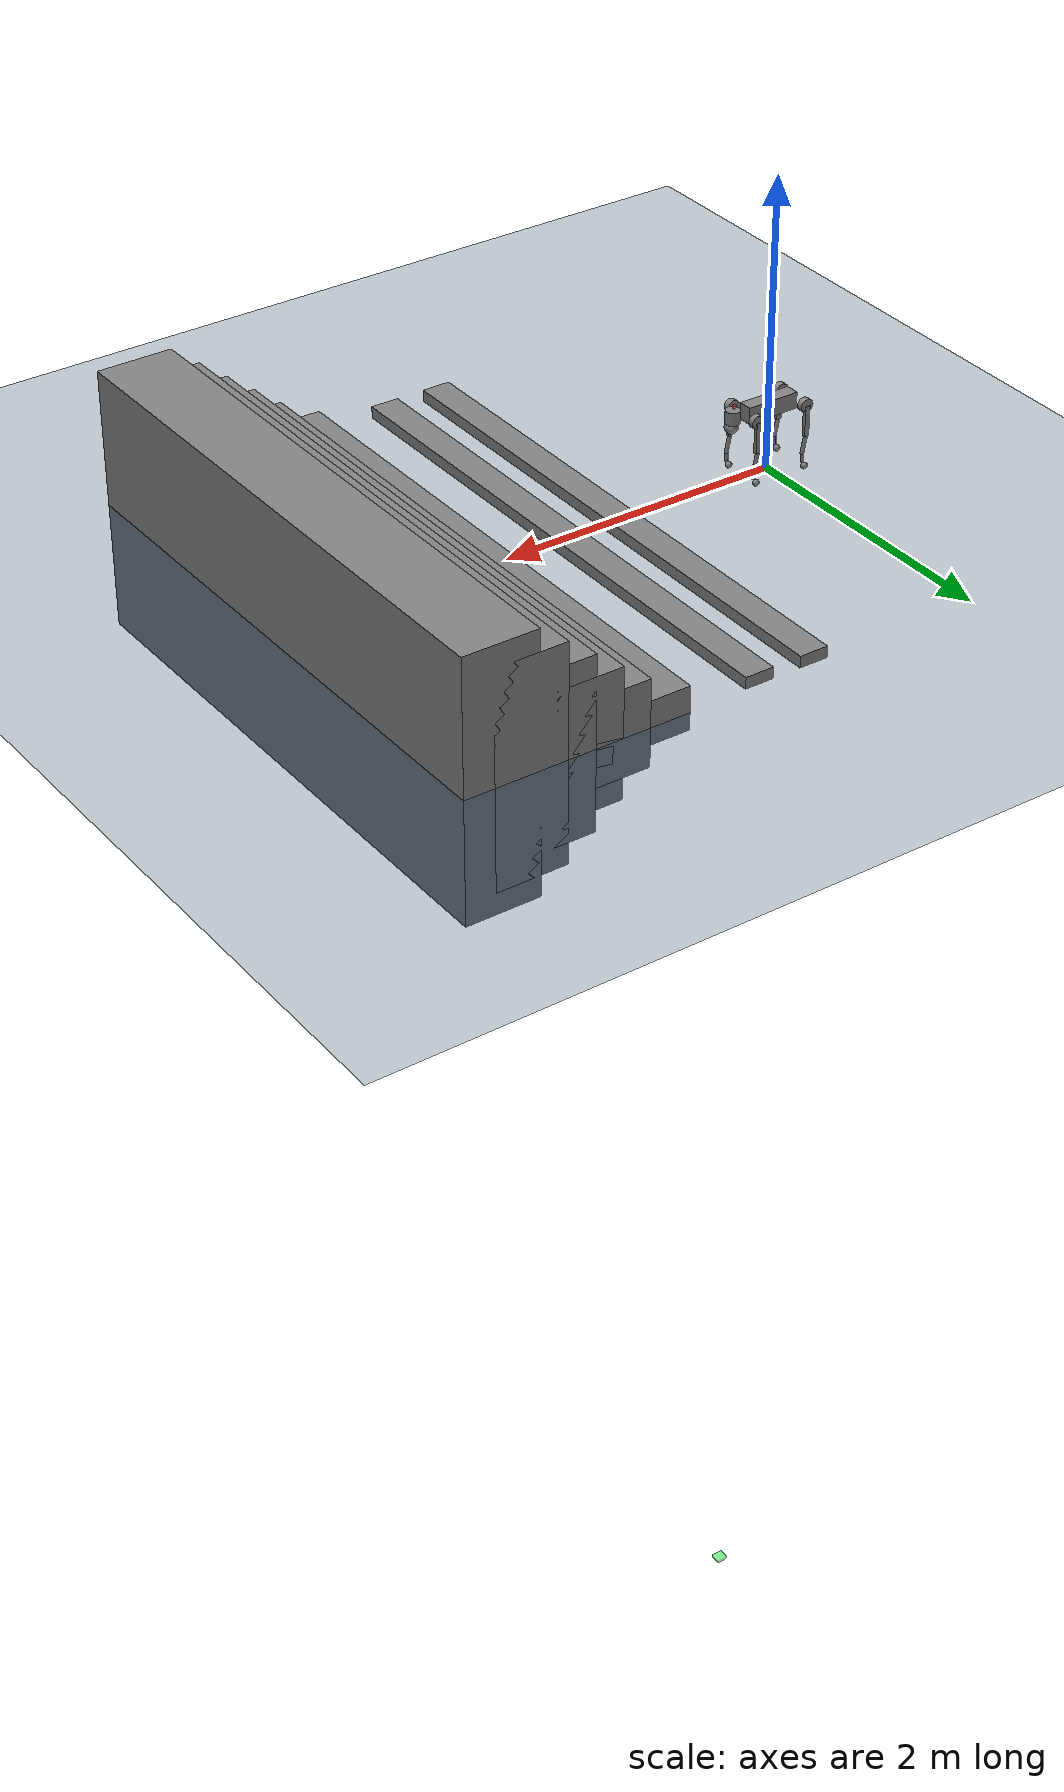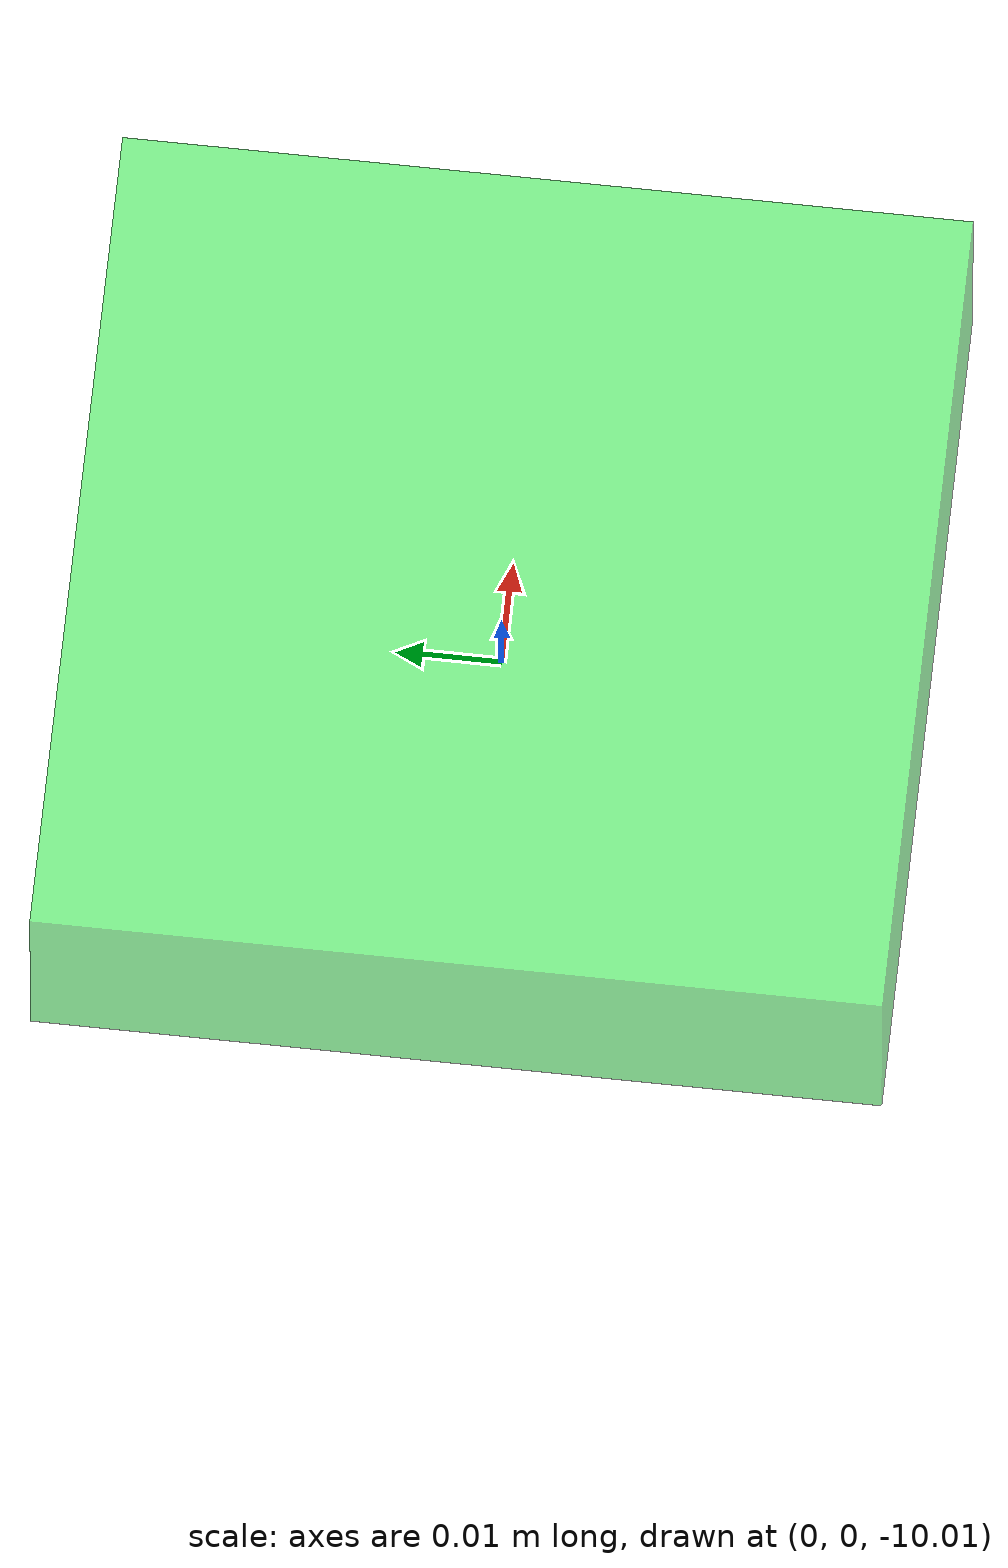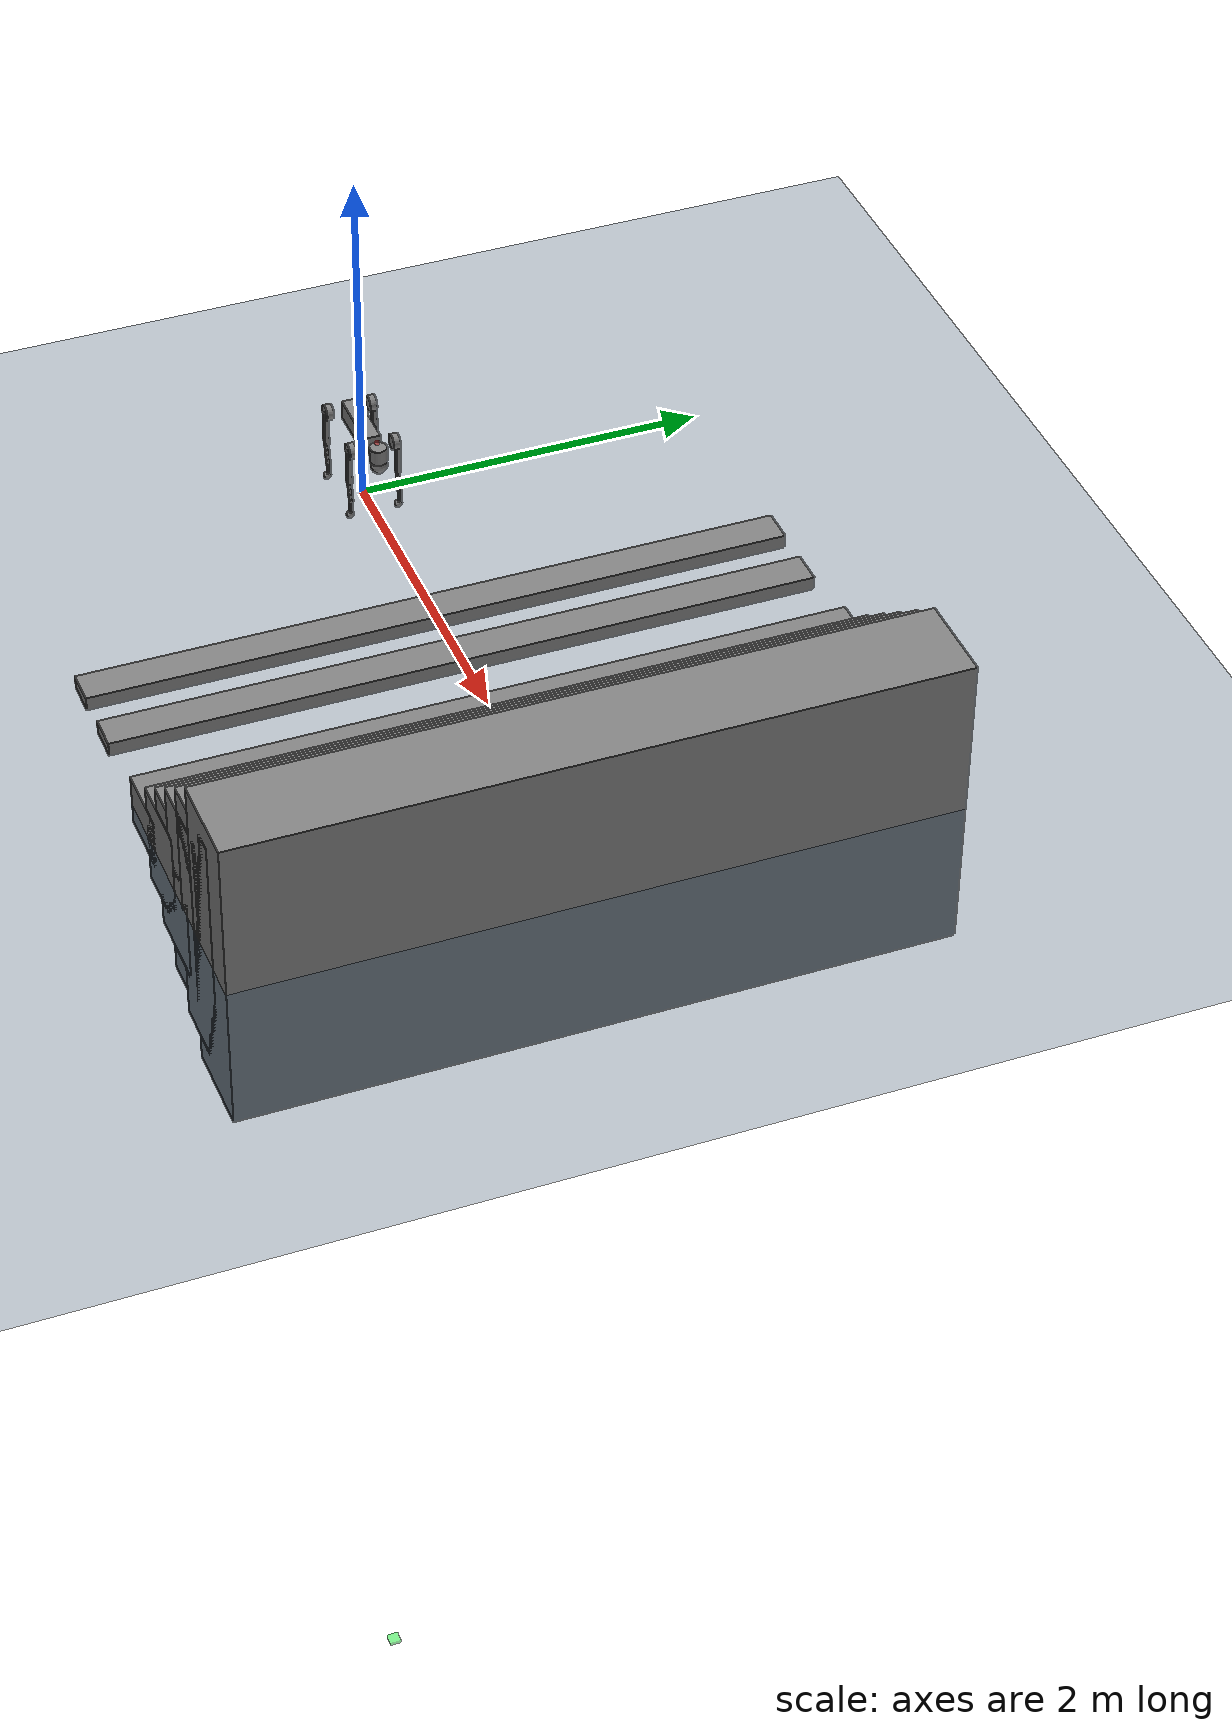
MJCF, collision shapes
<mujoco model="go2 scene">
  <include file="go2.xml"/>
  <include file="height_scan_mocap.xml"/>

  <statistic center="0 0 0.1" extent="0.8"/>

  <visual>
    <headlight diffuse="0.6 0.6 0.6" ambient="0.3 0.3 0.3" specular="0 0 0"/>
    <rgba haze="0.15 0.25 0.35 1"/>
    <global azimuth="-130" elevation="-20"/>
  </visual>

  <asset>
    <texture type="skybox" builtin="gradient" rgb1="0.3 0.5 0.7" rgb2="0 0 0" width="512" height="3072"/>
    <texture type="2d" name="groundplane" builtin="checker" mark="edge" rgb1="0.2 0.3 0.4" rgb2="0.1 0.2 0.3"
      markrgb="0.8 0.8 0.8" width="300" height="300"/>
    <material name="groundplane" texture="groundplane" texuniform="true" texrepeat="5 5" reflectance="0.2"/>
  </asset>

  <worldbody>
    <light pos="0 0 1.5" dir="0 0 -1" directional="true"/>
    <geom name="floor" size="0 0 0.05" type="plane" material="groundplane"/>

    <geom pos="1.2 0 0.04" type="box"  size="0.1 2 0.04" quat="1.0 0 0 0"/>
    <geom pos="1.6 0 0.04" type="box"  size="0.1 2 0.04" quat="1.0 0 0 0"/>

    <geom pos="2.3 0 0.02" type="box"  size="0.2 2 0.15" quat="1.0 0 0 0"/>
    <geom pos="2.6 0 0.02" type="box"  size="0.22 2 0.3" quat="1.0 0 0 0"/>
    <geom pos="2.8 0 0.02" type="box"  size="0.23 2 0.45" quat="1.0 0 0 0"/>
    <geom pos="3 0 0.02" type="box"  size="0.24 2 0.6" quat="1.0 0 0 0"/>
    <geom pos="3.2 0 0.02" type="box"  size="0.25 2 0.75" quat="1.0 0 0 0"/>
    <geom pos="3.4 0 0.02" type="box"  size="0.26 2 0.9" quat="1.0 0 0 0"/>
  </worldbody>
</mujoco>

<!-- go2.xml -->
<mujoco model="go2">
  <compiler angle="radian" meshdir="assets" autolimits="true" />

  <option cone="elliptic" impratio="100" />

  <default>
    <default class="go2">
      <geom friction="0.4" margin="0.001" condim="1"/>
      <joint axis="0 1 0" damping="0.1" armature="0.01" frictionloss="0.2"/>
      <motor ctrlrange="-23.7 23.7"/>
      <default class="abduction">
        <joint axis="1 0 0" range="-1.0472 1.0472"/>
      </default>
      <default class="hip">
        <default class="front_hip">
          <joint range="-1.5708 3.4907"/>
        </default>
        <default class="back_hip">
          <joint range="-0.5236 4.5379"/>
        </default>
      </default>
      <default class="knee">
        <joint range="-2.7227 -0.83776"/>
        <motor ctrlrange="-45.43 45.43"/>
      </default>
      <default class="visual">
        <geom type="mesh" contype="0" conaffinity="0" group="2"/>
      </default>
      <default class="collision">
        <geom group="3"/>
        <default class="foot">
          <geom size="0.022" pos="-0.002 0 -0.213" priority="1" condim="6"
            friction="0.4 0.02 0.01"/>
        </default>
      </default>
    </default>
  </default>

  <asset>
    <material name="metal" rgba=".9 .95 .95 1" />
    <material name="black" rgba="0 0 0 1" />
    <material name="white" rgba="1 1 1 1" />
    <material name="gray" rgba="0.671705 0.692426 0.774270 1" />

    <mesh file="base_0.obj" />
    <mesh file="base_1.obj" />
    <mesh file="base_2.obj" />
    <mesh file="base_3.obj" />
    <mesh file="base_4.obj" />
    <mesh file="hip_0.obj" />
    <mesh file="hip_1.obj" />
    <mesh file="thigh_0.obj" />
    <mesh file="thigh_1.obj" />
    <mesh file="thigh_mirror_0.obj" />
    <mesh file="thigh_mirror_1.obj" />
    <mesh file="calf_0.obj" />
    <mesh file="calf_1.obj" />
    <mesh file="calf_mirror_0.obj" />
    <mesh file="calf_mirror_1.obj" />
    <mesh file="foot.obj" />
  </asset>

  <worldbody>
    <body name="base_link" pos="0 0 0.445" childclass="go2">
      <inertial pos="0.021112 0 -0.005366" quat="-0.000543471 0.713435 -0.00173769 0.700719"
        mass="6.921"
        diaginertia="0.107027 0.0980771 0.0244531" />
      <freejoint />
      <geom mesh="base_0" material="black" class="visual" />
      <geom mesh="base_1" material="black" class="visual" />
      <geom mesh="base_2" material="black" class="visual" />
      <geom mesh="base_3" material="white" class="visual" />
      <geom mesh="base_4" material="gray" class="visual" />
      <geom size="0.1881 0.04675 0.057" type="box" class="collision" />
      <geom size="0.05 0.045" pos="0.285 0 0.01" type="cylinder" class="collision" />
      <geom size="0.047" pos="0.293 0 -0.06" class="collision" />
      <site name="imu" pos="-0.02557 0 0.04232" />
      <!-- Go2 head LiDAR (base_link frame). Mount RPY [roll, pitch, yaw] = [-2.9130, -0.1320, -1.0570] rad -->
      <site name="utlidar" pos="0.275 0 0.075" quat="0.065234 -0.859855 0.493362 -0.113964"
        size="0.015" rgba="1 0.2 0.2 0.6" />
      <body name="FL_hip" pos="0.1934 0.0465 0">
        <inertial pos="-0.0054 0.00194 -0.000105" quat="0.497014 0.499245 0.505462 0.498237"
          mass="0.678"
          diaginertia="0.00088403 0.000596003 0.000479967" />
        <joint name="FL_hip_joint" class="abduction" />
        <geom mesh="hip_0" material="metal" class="visual" />
        <geom mesh="hip_1" material="gray" class="visual" />
        <geom size="0.046 0.02" pos="0 0.08 0" quat="1 1 0 0" type="cylinder" class="collision" />
        <body name="FL_thigh" pos="0 0.0955 0">
          <inertial pos="-0.00374 -0.0223 -0.0327" quat="0.829533 0.0847635 -0.0200632 0.551623"
            mass="1.152"
            diaginertia="0.00594973 0.00584149 0.000878787" />
          <joint name="FL_thigh_joint" class="front_hip" />
          <geom mesh="thigh_0" material="metal" class="visual" />
          <geom mesh="thigh_1" material="gray" class="visual" />
          <geom size="0.1065 0.01225 0.017" pos="0 0 -0.1065" quat="0.707107 0 0.707107 0"
            type="box" class="collision" />
          <body name="FL_calf" pos="0 0 -0.213">
            <inertial pos="0.00629595 -0.000622121 -0.141417"
              quat="0.710672 0.00154099 -0.00450087 0.703508"
              mass="0.241352" diaginertia="0.0014901 0.00146356 5.31397e-05" />
            <joint name="FL_calf_joint" class="knee" />
            <geom mesh="calf_0" material="gray" class="visual" />
            <geom mesh="calf_1" material="black" class="visual" />
            <geom size="0.012 0.06" pos="0.008 0 -0.06" quat="0.994493 0 -0.104807 0"
              type="cylinder" class="collision" />
            <geom size="0.011 0.0325" pos="0.02 0 -0.148" quat="0.999688 0 0.0249974 0"
              type="cylinder" class="collision" />
            <geom pos="0 0 -0.213" mesh="foot" class="visual" material="black" />
            <geom name="FL" class="foot" />
            <body name="FL_foot" pos="0 0 -0.213" />
          </body>
        </body>
      </body>
      <body name="FR_hip" pos="0.1934 -0.0465 0">
        <inertial pos="-0.0054 -0.00194 -0.000105" quat="0.498237 0.505462 0.499245 0.497014"
          mass="0.678"
          diaginertia="0.00088403 0.000596003 0.000479967" />
        <joint name="FR_hip_joint" class="abduction" />
        <geom mesh="hip_0" material="metal" class="visual" quat="4.63268e-05 1 0 0" />
        <geom mesh="hip_1" material="gray" class="visual" quat="4.63268e-05 1 0 0" />
        <geom size="0.046 0.02" pos="0 -0.08 0" quat="0.707107 0.707107 0 0" type="cylinder"
          class="collision" />
        <body name="FR_thigh" pos="0 -0.0955 0">
          <inertial pos="-0.00374 0.0223 -0.0327" quat="0.551623 -0.0200632 0.0847635 0.829533"
            mass="1.152"
            diaginertia="0.00594973 0.00584149 0.000878787" />
          <joint name="FR_thigh_joint" class="front_hip" />
          <geom mesh="thigh_mirror_0" material="metal" class="visual" />
          <geom mesh="thigh_mirror_1" material="gray" class="visual" />
          <geom size="0.1065 0.01225 0.017" pos="0 0 -0.1065" quat="0.707107 0 0.707107 0"
            type="box" class="collision" />
          <body name="FR_calf" pos="0 0 -0.213">
            <inertial pos="0.00629595 0.000622121 -0.141417"
              quat="0.703508 -0.00450087 0.00154099 0.710672"
              mass="0.241352" diaginertia="0.0014901 0.00146356 5.31397e-05" />
            <joint name="FR_calf_joint" class="knee" />
            <geom mesh="calf_mirror_0" material="gray" class="visual" />
            <geom mesh="calf_mirror_1" material="black" class="visual" />
            <geom size="0.013 0.06" pos="0.01 0 -0.06" quat="0.995004 0 -0.0998334 0"
              type="cylinder" class="collision" />
            <geom size="0.011 0.0325" pos="0.02 0 -0.148" quat="0.999688 0 0.0249974 0"
              type="cylinder" class="collision" />
            <geom pos="0 0 -0.213" mesh="foot" class="visual" material="black" />
            <geom name="FR" class="foot" />
            <body name="FR_foot" pos="0 0 -0.213" />
          </body>
        </body>
      </body>
      <body name="RL_hip" pos="-0.1934 0.0465 0">
        <inertial pos="0.0054 0.00194 -0.000105" quat="0.505462 0.498237 0.497014 0.499245"
          mass="0.678"
          diaginertia="0.00088403 0.000596003 0.000479967" />
        <joint name="RL_hip_joint" class="abduction" />
        <geom mesh="hip_0" material="metal" class="visual" quat="4.63268e-05 0 1 0" />
        <geom mesh="hip_1" material="gray" class="visual" quat="4.63268e-05 0 1 0" />
        <geom size="0.046 0.02" pos="0 0.08 0" quat="0.707107 0.707107 0 0" type="cylinder"
          class="collision" />
        <body name="RL_thigh" pos="0 0.0955 0">
          <inertial pos="-0.00374 -0.0223 -0.0327" quat="0.829533 0.0847635 -0.0200632 0.551623"
            mass="1.152"
            diaginertia="0.00594973 0.00584149 0.000878787" />
          <joint name="RL_thigh_joint" class="back_hip" />
          <geom mesh="thigh_0" material="metal" class="visual" />
          <geom mesh="thigh_1" material="gray" class="visual" />
          <geom size="0.1065 0.01225 0.017" pos="0 0 -0.1065" quat="0.707107 0 0.707107 0"
            type="box" class="collision" />
          <body name="RL_calf" pos="0 0 -0.213">
            <inertial pos="0.00629595 -0.000622121 -0.141417"
              quat="0.710672 0.00154099 -0.00450087 0.703508"
              mass="0.241352" diaginertia="0.0014901 0.00146356 5.31397e-05" />
            <joint name="RL_calf_joint" class="knee" />
            <geom mesh="calf_0" material="gray" class="visual" />
            <geom mesh="calf_1" material="black" class="visual" />
            <geom size="0.013 0.06" pos="0.01 0 -0.06" quat="0.995004 0 -0.0998334 0"
              type="cylinder" class="collision" />
            <geom size="0.011 0.0325" pos="0.02 0 -0.148" quat="0.999688 0 0.0249974 0"
              type="cylinder" class="collision" />
            <geom pos="0 0 -0.213" mesh="foot" class="visual" material="black" />
            <geom name="RL" class="foot" />
            <body name="RL_foot" pos="0 0 -0.213" />
          </body>
        </body>
      </body>
      <body name="RR_hip" pos="-0.1934 -0.0465 0">
        <inertial pos="0.0054 -0.00194 -0.000105" quat="0.499245 0.497014 0.498237 0.505462"
          mass="0.678"
          diaginertia="0.00088403 0.000596003 0.000479967" />
        <joint name="RR_hip_joint" class="abduction" />
        <geom mesh="hip_0" material="metal" class="visual"
          quat="2.14617e-09 4.63268e-05 4.63268e-05 -1" />
        <geom mesh="hip_1" material="gray" class="visual"
          quat="2.14617e-09 4.63268e-05 4.63268e-05 -1" />
        <geom size="0.046 0.02" pos="0 -0.08 0" quat="0.707107 0.707107 0 0" type="cylinder"
          class="collision" />
        <body name="RR_thigh" pos="0 -0.0955 0">
          <inertial pos="-0.00374 0.0223 -0.0327" quat="0.551623 -0.0200632 0.0847635 0.829533"
            mass="1.152"
            diaginertia="0.00594973 0.00584149 0.000878787" />
          <joint name="RR_thigh_joint" class="back_hip" />
          <geom mesh="thigh_mirror_0" material="metal" class="visual" />
          <geom mesh="thigh_mirror_1" material="gray" class="visual" />
          <geom size="0.1065 0.01225 0.017" pos="0 0 -0.1065" quat="0.707107 0 0.707107 0"
            type="box" class="collision" />
          <body name="RR_calf" pos="0 0 -0.213">
            <inertial pos="0.00629595 0.000622121 -0.141417"
              quat="0.703508 -0.00450087 0.00154099 0.710672"
              mass="0.241352" diaginertia="0.0014901 0.00146356 5.31397e-05" />
            <joint name="RR_calf_joint" class="knee" />
            <geom mesh="calf_mirror_0" material="gray" class="visual" />
            <geom mesh="calf_mirror_1" material="black" class="visual" />
            <geom size="0.013 0.06" pos="0.01 0 -0.06" quat="0.995004 0 -0.0998334 0"
              type="cylinder" class="collision" />
            <geom size="0.011 0.0325" pos="0.02 0 -0.148" quat="0.999688 0 0.0249974 0"
              type="cylinder" class="collision" />
            <geom pos="0 0 -0.213" mesh="foot" class="visual" material="black" />
            <geom name="RR" class="foot" />
            <body name="RR_foot" pos="0 0 -0.213" />
          </body>
        </body>
      </body>
    </body>
  </worldbody>

  <actuator>
    <motor class="abduction" name="FR_hip" joint="FR_hip_joint" />
    <motor class="hip" name="FR_thigh" joint="FR_thigh_joint" />
    <motor class="knee" name="FR_calf" joint="FR_calf_joint" />
    <motor class="abduction" name="FL_hip" joint="FL_hip_joint" />
    <motor class="hip" name="FL_thigh" joint="FL_thigh_joint" />
    <motor class="knee" name="FL_calf" joint="FL_calf_joint" />
    <motor class="abduction" name="RR_hip" joint="RR_hip_joint" />
    <motor class="hip" name="RR_thigh" joint="RR_thigh_joint" />
    <motor class="knee" name="RR_calf" joint="RR_calf_joint" />
    <motor class="abduction" name="RL_hip" joint="RL_hip_joint" />
    <motor class="hip" name="RL_thigh" joint="RL_thigh_joint" />
    <motor class="knee" name="RL_calf" joint="RL_calf_joint" />
  </actuator>

  <sensor>
    <jointpos name="FR_hip_pos" joint="FR_hip_joint" />
    <jointpos name="FR_thigh_pos" joint="FR_thigh_joint" />
    <jointpos name="FR_calf_pos" joint="FR_calf_joint" />
    <jointpos name="FL_hip_pos" joint="FL_hip_joint" />
    <jointpos name="FL_thigh_pos" joint="FL_thigh_joint" />
    <jointpos name="FL_calf_pos" joint="FL_calf_joint" />
    <jointpos name="RR_hip_pos" joint="RR_hip_joint" />
    <jointpos name="RR_thigh_pos" joint="RR_thigh_joint" />
    <jointpos name="RR_calf_pos" joint="RR_calf_joint" />
    <jointpos name="RL_hip_pos" joint="RL_hip_joint" />
    <jointpos name="RL_thigh_pos" joint="RL_thigh_joint" />
    <jointpos name="RL_calf_pos" joint="RL_calf_joint" />

    <jointvel name="FR_hip_vel" joint="FR_hip_joint" />
    <jointvel name="FR_thigh_vel" joint="FR_thigh_joint" />
    <jointvel name="FR_calf_vel" joint="FR_calf_joint" />
    <jointvel name="FL_hip_vel" joint="FL_hip_joint" />
    <jointvel name="FL_thigh_vel" joint="FL_thigh_joint" />
    <jointvel name="FL_calf_vel" joint="FL_calf_joint" />
    <jointvel name="RR_hip_vel" joint="RR_hip_joint" />
    <jointvel name="RR_thigh_vel" joint="RR_thigh_joint" />
    <jointvel name="RR_calf_vel" joint="RR_calf_joint" />
    <jointvel name="RL_hip_vel" joint="RL_hip_joint" />
    <jointvel name="RL_thigh_vel" joint="RL_thigh_joint" />
    <jointvel name="RL_calf_vel" joint="RL_calf_joint" />

    <jointactuatorfrc name="FR_hip_torque" joint="FR_hip_joint" noise="0.01" />
    <jointactuatorfrc name="FR_thigh_torque" joint="FR_thigh_joint" noise="0.01" />
    <jointactuatorfrc name="FR_calf_torque" joint="FR_calf_joint" noise="0.01" />
    <jointactuatorfrc name="FL_hip_torque" joint="FL_hip_joint" noise="0.01" />
    <jointactuatorfrc name="FL_thigh_torque" joint="FL_thigh_joint" noise="0.01" />
    <jointactuatorfrc name="FL_calf_torque" joint="FL_calf_joint" noise="0.01" />
    <jointactuatorfrc name="RR_hip_torque" joint="RR_hip_joint" noise="0.01" />
    <jointactuatorfrc name="RR_thigh_torque" joint="RR_thigh_joint" noise="0.01" />
    <jointactuatorfrc name="RR_calf_torque" joint="RR_calf_joint" noise="0.01" />
    <jointactuatorfrc name="RL_hip_torque" joint="RL_hip_joint" noise="0.01" />
    <jointactuatorfrc name="RL_thigh_torque" joint="RL_thigh_joint" noise="0.01" />
    <jointactuatorfrc name="RL_calf_torque" joint="RL_calf_joint" noise="0.01" />

    <framequat name="imu_quat" objtype="site" objname="imu" />
    <gyro name="imu_gyro" site="imu" />
    <accelerometer name="imu_acc" site="imu" />

    <framepos name="frame_pos" objtype="site" objname="imu" />
    <framelinvel name="frame_vel" objtype="site" objname="imu" />
  </sensor>

  <keyframe>
    <key name="home" qpos="0 0 0.27 1 0 0 0 0 0.9 -1.8 0 0.9 -1.8 0 0.9 -1.8 0 0.9 -1.8"
      ctrl="0 0.9 -1.8 0 0.9 -1.8 0 0.9 -1.8 0 0.9 -1.8" />
  </keyframe>
</mujoco>

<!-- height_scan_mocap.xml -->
<mujoco model="height_scan_mocap">
  <worldbody>
    <body mocap="true" name="hs_000" pos="0 0 -10"><geom type="box" size="0.04 0.04 0.012" rgba="0.1 0.9 0.2 0.55" contype="0" conaffinity="0" group="2"/></body>
    <body mocap="true" name="hs_001" pos="0 0 -10"><geom type="box" size="0.04 0.04 0.012" rgba="0.1 0.9 0.2 0.55" contype="0" conaffinity="0" group="2"/></body>
    <body mocap="true" name="hs_002" pos="0 0 -10"><geom type="box" size="0.04 0.04 0.012" rgba="0.1 0.9 0.2 0.55" contype="0" conaffinity="0" group="2"/></body>
    <body mocap="true" name="hs_003" pos="0 0 -10"><geom type="box" size="0.04 0.04 0.012" rgba="0.1 0.9 0.2 0.55" contype="0" conaffinity="0" group="2"/></body>
    <body mocap="true" name="hs_004" pos="0 0 -10"><geom type="box" size="0.04 0.04 0.012" rgba="0.1 0.9 0.2 0.55" contype="0" conaffinity="0" group="2"/></body>
    <body mocap="true" name="hs_005" pos="0 0 -10"><geom type="box" size="0.04 0.04 0.012" rgba="0.1 0.9 0.2 0.55" contype="0" conaffinity="0" group="2"/></body>
    <body mocap="true" name="hs_006" pos="0 0 -10"><geom type="box" size="0.04 0.04 0.012" rgba="0.1 0.9 0.2 0.55" contype="0" conaffinity="0" group="2"/></body>
    <body mocap="true" name="hs_007" pos="0 0 -10"><geom type="box" size="0.04 0.04 0.012" rgba="0.1 0.9 0.2 0.55" contype="0" conaffinity="0" group="2"/></body>
    <body mocap="true" name="hs_008" pos="0 0 -10"><geom type="box" size="0.04 0.04 0.012" rgba="0.1 0.9 0.2 0.55" contype="0" conaffinity="0" group="2"/></body>
    <body mocap="true" name="hs_009" pos="0 0 -10"><geom type="box" size="0.04 0.04 0.012" rgba="0.1 0.9 0.2 0.55" contype="0" conaffinity="0" group="2"/></body>
    <body mocap="true" name="hs_010" pos="0 0 -10"><geom type="box" size="0.04 0.04 0.012" rgba="0.1 0.9 0.2 0.55" contype="0" conaffinity="0" group="2"/></body>
    <body mocap="true" name="hs_011" pos="0 0 -10"><geom type="box" size="0.04 0.04 0.012" rgba="0.1 0.9 0.2 0.55" contype="0" conaffinity="0" group="2"/></body>
    <body mocap="true" name="hs_012" pos="0 0 -10"><geom type="box" size="0.04 0.04 0.012" rgba="0.1 0.9 0.2 0.55" contype="0" conaffinity="0" group="2"/></body>
    <body mocap="true" name="hs_013" pos="0 0 -10"><geom type="box" size="0.04 0.04 0.012" rgba="0.1 0.9 0.2 0.55" contype="0" conaffinity="0" group="2"/></body>
    <body mocap="true" name="hs_014" pos="0 0 -10"><geom type="box" size="0.04 0.04 0.012" rgba="0.1 0.9 0.2 0.55" contype="0" conaffinity="0" group="2"/></body>
    <body mocap="true" name="hs_015" pos="0 0 -10"><geom type="box" size="0.04 0.04 0.012" rgba="0.1 0.9 0.2 0.55" contype="0" conaffinity="0" group="2"/></body>
    <body mocap="true" name="hs_016" pos="0 0 -10"><geom type="box" size="0.04 0.04 0.012" rgba="0.1 0.9 0.2 0.55" contype="0" conaffinity="0" group="2"/></body>
    <body mocap="true" name="hs_017" pos="0 0 -10"><geom type="box" size="0.04 0.04 0.012" rgba="0.1 0.9 0.2 0.55" contype="0" conaffinity="0" group="2"/></body>
    <body mocap="true" name="hs_018" pos="0 0 -10"><geom type="box" size="0.04 0.04 0.012" rgba="0.1 0.9 0.2 0.55" contype="0" conaffinity="0" group="2"/></body>
    <body mocap="true" name="hs_019" pos="0 0 -10"><geom type="box" size="0.04 0.04 0.012" rgba="0.1 0.9 0.2 0.55" contype="0" conaffinity="0" group="2"/></body>
    <body mocap="true" name="hs_020" pos="0 0 -10"><geom type="box" size="0.04 0.04 0.012" rgba="0.1 0.9 0.2 0.55" contype="0" conaffinity="0" group="2"/></body>
    <body mocap="true" name="hs_021" pos="0 0 -10"><geom type="box" size="0.04 0.04 0.012" rgba="0.1 0.9 0.2 0.55" contype="0" conaffinity="0" group="2"/></body>
    <body mocap="true" name="hs_022" pos="0 0 -10"><geom type="box" size="0.04 0.04 0.012" rgba="0.1 0.9 0.2 0.55" contype="0" conaffinity="0" group="2"/></body>
    <body mocap="true" name="hs_023" pos="0 0 -10"><geom type="box" size="0.04 0.04 0.012" rgba="0.1 0.9 0.2 0.55" contype="0" conaffinity="0" group="2"/></body>
    <body mocap="true" name="hs_024" pos="0 0 -10"><geom type="box" size="0.04 0.04 0.012" rgba="0.1 0.9 0.2 0.55" contype="0" conaffinity="0" group="2"/></body>
    <body mocap="true" name="hs_025" pos="0 0 -10"><geom type="box" size="0.04 0.04 0.012" rgba="0.1 0.9 0.2 0.55" contype="0" conaffinity="0" group="2"/></body>
    <body mocap="true" name="hs_026" pos="0 0 -10"><geom type="box" size="0.04 0.04 0.012" rgba="0.1 0.9 0.2 0.55" contype="0" conaffinity="0" group="2"/></body>
    <body mocap="true" name="hs_027" pos="0 0 -10"><geom type="box" size="0.04 0.04 0.012" rgba="0.1 0.9 0.2 0.55" contype="0" conaffinity="0" group="2"/></body>
    <body mocap="true" name="hs_028" pos="0 0 -10"><geom type="box" size="0.04 0.04 0.012" rgba="0.1 0.9 0.2 0.55" contype="0" conaffinity="0" group="2"/></body>
    <body mocap="true" name="hs_029" pos="0 0 -10"><geom type="box" size="0.04 0.04 0.012" rgba="0.1 0.9 0.2 0.55" contype="0" conaffinity="0" group="2"/></body>
    <body mocap="true" name="hs_030" pos="0 0 -10"><geom type="box" size="0.04 0.04 0.012" rgba="0.1 0.9 0.2 0.55" contype="0" conaffinity="0" group="2"/></body>
    <body mocap="true" name="hs_031" pos="0 0 -10"><geom type="box" size="0.04 0.04 0.012" rgba="0.1 0.9 0.2 0.55" contype="0" conaffinity="0" group="2"/></body>
    <body mocap="true" name="hs_032" pos="0 0 -10"><geom type="box" size="0.04 0.04 0.012" rgba="0.1 0.9 0.2 0.55" contype="0" conaffinity="0" group="2"/></body>
    <body mocap="true" name="hs_033" pos="0 0 -10"><geom type="box" size="0.04 0.04 0.012" rgba="0.1 0.9 0.2 0.55" contype="0" conaffinity="0" group="2"/></body>
    <body mocap="true" name="hs_034" pos="0 0 -10"><geom type="box" size="0.04 0.04 0.012" rgba="0.1 0.9 0.2 0.55" contype="0" conaffinity="0" group="2"/></body>
    <body mocap="true" name="hs_035" pos="0 0 -10"><geom type="box" size="0.04 0.04 0.012" rgba="0.1 0.9 0.2 0.55" contype="0" conaffinity="0" group="2"/></body>
    <body mocap="true" name="hs_036" pos="0 0 -10"><geom type="box" size="0.04 0.04 0.012" rgba="0.1 0.9 0.2 0.55" contype="0" conaffinity="0" group="2"/></body>
    <body mocap="true" name="hs_037" pos="0 0 -10"><geom type="box" size="0.04 0.04 0.012" rgba="0.1 0.9 0.2 0.55" contype="0" conaffinity="0" group="2"/></body>
    <body mocap="true" name="hs_038" pos="0 0 -10"><geom type="box" size="0.04 0.04 0.012" rgba="0.1 0.9 0.2 0.55" contype="0" conaffinity="0" group="2"/></body>
    <body mocap="true" name="hs_039" pos="0 0 -10"><geom type="box" size="0.04 0.04 0.012" rgba="0.1 0.9 0.2 0.55" contype="0" conaffinity="0" group="2"/></body>
    <body mocap="true" name="hs_040" pos="0 0 -10"><geom type="box" size="0.04 0.04 0.012" rgba="0.1 0.9 0.2 0.55" contype="0" conaffinity="0" group="2"/></body>
    <body mocap="true" name="hs_041" pos="0 0 -10"><geom type="box" size="0.04 0.04 0.012" rgba="0.1 0.9 0.2 0.55" contype="0" conaffinity="0" group="2"/></body>
    <body mocap="true" name="hs_042" pos="0 0 -10"><geom type="box" size="0.04 0.04 0.012" rgba="0.1 0.9 0.2 0.55" contype="0" conaffinity="0" group="2"/></body>
    <body mocap="true" name="hs_043" pos="0 0 -10"><geom type="box" size="0.04 0.04 0.012" rgba="0.1 0.9 0.2 0.55" contype="0" conaffinity="0" group="2"/></body>
    <body mocap="true" name="hs_044" pos="0 0 -10"><geom type="box" size="0.04 0.04 0.012" rgba="0.1 0.9 0.2 0.55" contype="0" conaffinity="0" group="2"/></body>
    <body mocap="true" name="hs_045" pos="0 0 -10"><geom type="box" size="0.04 0.04 0.012" rgba="0.1 0.9 0.2 0.55" contype="0" conaffinity="0" group="2"/></body>
    <body mocap="true" name="hs_046" pos="0 0 -10"><geom type="box" size="0.04 0.04 0.012" rgba="0.1 0.9 0.2 0.55" contype="0" conaffinity="0" group="2"/></body>
    <body mocap="true" name="hs_047" pos="0 0 -10"><geom type="box" size="0.04 0.04 0.012" rgba="0.1 0.9 0.2 0.55" contype="0" conaffinity="0" group="2"/></body>
    <body mocap="true" name="hs_048" pos="0 0 -10"><geom type="box" size="0.04 0.04 0.012" rgba="0.1 0.9 0.2 0.55" contype="0" conaffinity="0" group="2"/></body>
    <body mocap="true" name="hs_049" pos="0 0 -10"><geom type="box" size="0.04 0.04 0.012" rgba="0.1 0.9 0.2 0.55" contype="0" conaffinity="0" group="2"/></body>
    <body mocap="true" name="hs_050" pos="0 0 -10"><geom type="box" size="0.04 0.04 0.012" rgba="0.1 0.9 0.2 0.55" contype="0" conaffinity="0" group="2"/></body>
    <body mocap="true" name="hs_051" pos="0 0 -10"><geom type="box" size="0.04 0.04 0.012" rgba="0.1 0.9 0.2 0.55" contype="0" conaffinity="0" group="2"/></body>
    <body mocap="true" name="hs_052" pos="0 0 -10"><geom type="box" size="0.04 0.04 0.012" rgba="0.1 0.9 0.2 0.55" contype="0" conaffinity="0" group="2"/></body>
    <body mocap="true" name="hs_053" pos="0 0 -10"><geom type="box" size="0.04 0.04 0.012" rgba="0.1 0.9 0.2 0.55" contype="0" conaffinity="0" group="2"/></body>
    <body mocap="true" name="hs_054" pos="0 0 -10"><geom type="box" size="0.04 0.04 0.012" rgba="0.1 0.9 0.2 0.55" contype="0" conaffinity="0" group="2"/></body>
    <body mocap="true" name="hs_055" pos="0 0 -10"><geom type="box" size="0.04 0.04 0.012" rgba="0.1 0.9 0.2 0.55" contype="0" conaffinity="0" group="2"/></body>
    <body mocap="true" name="hs_056" pos="0 0 -10"><geom type="box" size="0.04 0.04 0.012" rgba="0.1 0.9 0.2 0.55" contype="0" conaffinity="0" group="2"/></body>
    <body mocap="true" name="hs_057" pos="0 0 -10"><geom type="box" size="0.04 0.04 0.012" rgba="0.1 0.9 0.2 0.55" contype="0" conaffinity="0" group="2"/></body>
    <body mocap="true" name="hs_058" pos="0 0 -10"><geom type="box" size="0.04 0.04 0.012" rgba="0.1 0.9 0.2 0.55" contype="0" conaffinity="0" group="2"/></body>
    <body mocap="true" name="hs_059" pos="0 0 -10"><geom type="box" size="0.04 0.04 0.012" rgba="0.1 0.9 0.2 0.55" contype="0" conaffinity="0" group="2"/></body>
    <body mocap="true" name="hs_060" pos="0 0 -10"><geom type="box" size="0.04 0.04 0.012" rgba="0.1 0.9 0.2 0.55" contype="0" conaffinity="0" group="2"/></body>
    <body mocap="true" name="hs_061" pos="0 0 -10"><geom type="box" size="0.04 0.04 0.012" rgba="0.1 0.9 0.2 0.55" contype="0" conaffinity="0" group="2"/></body>
    <body mocap="true" name="hs_062" pos="0 0 -10"><geom type="box" size="0.04 0.04 0.012" rgba="0.1 0.9 0.2 0.55" contype="0" conaffinity="0" group="2"/></body>
    <body mocap="true" name="hs_063" pos="0 0 -10"><geom type="box" size="0.04 0.04 0.012" rgba="0.1 0.9 0.2 0.55" contype="0" conaffinity="0" group="2"/></body>
    <body mocap="true" name="hs_064" pos="0 0 -10"><geom type="box" size="0.04 0.04 0.012" rgba="0.1 0.9 0.2 0.55" contype="0" conaffinity="0" group="2"/></body>
    <body mocap="true" name="hs_065" pos="0 0 -10"><geom type="box" size="0.04 0.04 0.012" rgba="0.1 0.9 0.2 0.55" contype="0" conaffinity="0" group="2"/></body>
    <body mocap="true" name="hs_066" pos="0 0 -10"><geom type="box" size="0.04 0.04 0.012" rgba="0.1 0.9 0.2 0.55" contype="0" conaffinity="0" group="2"/></body>
    <body mocap="true" name="hs_067" pos="0 0 -10"><geom type="box" size="0.04 0.04 0.012" rgba="0.1 0.9 0.2 0.55" contype="0" conaffinity="0" group="2"/></body>
    <body mocap="true" name="hs_068" pos="0 0 -10"><geom type="box" size="0.04 0.04 0.012" rgba="0.1 0.9 0.2 0.55" contype="0" conaffinity="0" group="2"/></body>
    <body mocap="true" name="hs_069" pos="0 0 -10"><geom type="box" size="0.04 0.04 0.012" rgba="0.1 0.9 0.2 0.55" contype="0" conaffinity="0" group="2"/></body>
    <body mocap="true" name="hs_070" pos="0 0 -10"><geom type="box" size="0.04 0.04 0.012" rgba="0.1 0.9 0.2 0.55" contype="0" conaffinity="0" group="2"/></body>
    <body mocap="true" name="hs_071" pos="0 0 -10"><geom type="box" size="0.04 0.04 0.012" rgba="0.1 0.9 0.2 0.55" contype="0" conaffinity="0" group="2"/></body>
    <body mocap="true" name="hs_072" pos="0 0 -10"><geom type="box" size="0.04 0.04 0.012" rgba="0.1 0.9 0.2 0.55" contype="0" conaffinity="0" group="2"/></body>
    <body mocap="true" name="hs_073" pos="0 0 -10"><geom type="box" size="0.04 0.04 0.012" rgba="0.1 0.9 0.2 0.55" contype="0" conaffinity="0" group="2"/></body>
    <body mocap="true" name="hs_074" pos="0 0 -10"><geom type="box" size="0.04 0.04 0.012" rgba="0.1 0.9 0.2 0.55" contype="0" conaffinity="0" group="2"/></body>
    <body mocap="true" name="hs_075" pos="0 0 -10"><geom type="box" size="0.04 0.04 0.012" rgba="0.1 0.9 0.2 0.55" contype="0" conaffinity="0" group="2"/></body>
    <body mocap="true" name="hs_076" pos="0 0 -10"><geom type="box" size="0.04 0.04 0.012" rgba="0.1 0.9 0.2 0.55" contype="0" conaffinity="0" group="2"/></body>
    <body mocap="true" name="hs_077" pos="0 0 -10"><geom type="box" size="0.04 0.04 0.012" rgba="0.1 0.9 0.2 0.55" contype="0" conaffinity="0" group="2"/></body>
    <body mocap="true" name="hs_078" pos="0 0 -10"><geom type="box" size="0.04 0.04 0.012" rgba="0.1 0.9 0.2 0.55" contype="0" conaffinity="0" group="2"/></body>
    <body mocap="true" name="hs_079" pos="0 0 -10"><geom type="box" size="0.04 0.04 0.012" rgba="0.1 0.9 0.2 0.55" contype="0" conaffinity="0" group="2"/></body>
    <body mocap="true" name="hs_080" pos="0 0 -10"><geom type="box" size="0.04 0.04 0.012" rgba="0.1 0.9 0.2 0.55" contype="0" conaffinity="0" group="2"/></body>
    <body mocap="true" name="hs_081" pos="0 0 -10"><geom type="box" size="0.04 0.04 0.012" rgba="0.1 0.9 0.2 0.55" contype="0" conaffinity="0" group="2"/></body>
    <body mocap="true" name="hs_082" pos="0 0 -10"><geom type="box" size="0.04 0.04 0.012" rgba="0.1 0.9 0.2 0.55" contype="0" conaffinity="0" group="2"/></body>
    <body mocap="true" name="hs_083" pos="0 0 -10"><geom type="box" size="0.04 0.04 0.012" rgba="0.1 0.9 0.2 0.55" contype="0" conaffinity="0" group="2"/></body>
    <body mocap="true" name="hs_084" pos="0 0 -10"><geom type="box" size="0.04 0.04 0.012" rgba="0.1 0.9 0.2 0.55" contype="0" conaffinity="0" group="2"/></body>
    <body mocap="true" name="hs_085" pos="0 0 -10"><geom type="box" size="0.04 0.04 0.012" rgba="0.1 0.9 0.2 0.55" contype="0" conaffinity="0" group="2"/></body>
    <body mocap="true" name="hs_086" pos="0 0 -10"><geom type="box" size="0.04 0.04 0.012" rgba="0.1 0.9 0.2 0.55" contype="0" conaffinity="0" group="2"/></body>
    <body mocap="true" name="hs_087" pos="0 0 -10"><geom type="box" size="0.04 0.04 0.012" rgba="0.1 0.9 0.2 0.55" contype="0" conaffinity="0" group="2"/></body>
    <body mocap="true" name="hs_088" pos="0 0 -10"><geom type="box" size="0.04 0.04 0.012" rgba="0.1 0.9 0.2 0.55" contype="0" conaffinity="0" group="2"/></body>
    <body mocap="true" name="hs_089" pos="0 0 -10"><geom type="box" size="0.04 0.04 0.012" rgba="0.1 0.9 0.2 0.55" contype="0" conaffinity="0" group="2"/></body>
    <body mocap="true" name="hs_090" pos="0 0 -10"><geom type="box" size="0.04 0.04 0.012" rgba="0.1 0.9 0.2 0.55" contype="0" conaffinity="0" group="2"/></body>
    <body mocap="true" name="hs_091" pos="0 0 -10"><geom type="box" size="0.04 0.04 0.012" rgba="0.1 0.9 0.2 0.55" contype="0" conaffinity="0" group="2"/></body>
    <body mocap="true" name="hs_092" pos="0 0 -10"><geom type="box" size="0.04 0.04 0.012" rgba="0.1 0.9 0.2 0.55" contype="0" conaffinity="0" group="2"/></body>
    <body mocap="true" name="hs_093" pos="0 0 -10"><geom type="box" size="0.04 0.04 0.012" rgba="0.1 0.9 0.2 0.55" contype="0" conaffinity="0" group="2"/></body>
    <body mocap="true" name="hs_094" pos="0 0 -10"><geom type="box" size="0.04 0.04 0.012" rgba="0.1 0.9 0.2 0.55" contype="0" conaffinity="0" group="2"/></body>
    <body mocap="true" name="hs_095" pos="0 0 -10"><geom type="box" size="0.04 0.04 0.012" rgba="0.1 0.9 0.2 0.55" contype="0" conaffinity="0" group="2"/></body>
    <body mocap="true" name="hs_096" pos="0 0 -10"><geom type="box" size="0.04 0.04 0.012" rgba="0.1 0.9 0.2 0.55" contype="0" conaffinity="0" group="2"/></body>
    <body mocap="true" name="hs_097" pos="0 0 -10"><geom type="box" size="0.04 0.04 0.012" rgba="0.1 0.9 0.2 0.55" contype="0" conaffinity="0" group="2"/></body>
    <body mocap="true" name="hs_098" pos="0 0 -10"><geom type="box" size="0.04 0.04 0.012" rgba="0.1 0.9 0.2 0.55" contype="0" conaffinity="0" group="2"/></body>
    <body mocap="true" name="hs_099" pos="0 0 -10"><geom type="box" size="0.04 0.04 0.012" rgba="0.1 0.9 0.2 0.55" contype="0" conaffinity="0" group="2"/></body>
    <body mocap="true" name="hs_100" pos="0 0 -10"><geom type="box" size="0.04 0.04 0.012" rgba="0.1 0.9 0.2 0.55" contype="0" conaffinity="0" group="2"/></body>
    <body mocap="true" name="hs_101" pos="0 0 -10"><geom type="box" size="0.04 0.04 0.012" rgba="0.1 0.9 0.2 0.55" contype="0" conaffinity="0" group="2"/></body>
    <body mocap="true" name="hs_102" pos="0 0 -10"><geom type="box" size="0.04 0.04 0.012" rgba="0.1 0.9 0.2 0.55" contype="0" conaffinity="0" group="2"/></body>
    <body mocap="true" name="hs_103" pos="0 0 -10"><geom type="box" size="0.04 0.04 0.012" rgba="0.1 0.9 0.2 0.55" contype="0" conaffinity="0" group="2"/></body>
    <body mocap="true" name="hs_104" pos="0 0 -10"><geom type="box" size="0.04 0.04 0.012" rgba="0.1 0.9 0.2 0.55" contype="0" conaffinity="0" group="2"/></body>
    <body mocap="true" name="hs_105" pos="0 0 -10"><geom type="box" size="0.04 0.04 0.012" rgba="0.1 0.9 0.2 0.55" contype="0" conaffinity="0" group="2"/></body>
    <body mocap="true" name="hs_106" pos="0 0 -10"><geom type="box" size="0.04 0.04 0.012" rgba="0.1 0.9 0.2 0.55" contype="0" conaffinity="0" group="2"/></body>
    <body mocap="true" name="hs_107" pos="0 0 -10"><geom type="box" size="0.04 0.04 0.012" rgba="0.1 0.9 0.2 0.55" contype="0" conaffinity="0" group="2"/></body>
    <body mocap="true" name="hs_108" pos="0 0 -10"><geom type="box" size="0.04 0.04 0.012" rgba="0.1 0.9 0.2 0.55" contype="0" conaffinity="0" group="2"/></body>
    <body mocap="true" name="hs_109" pos="0 0 -10"><geom type="box" size="0.04 0.04 0.012" rgba="0.1 0.9 0.2 0.55" contype="0" conaffinity="0" group="2"/></body>
    <body mocap="true" name="hs_110" pos="0 0 -10"><geom type="box" size="0.04 0.04 0.012" rgba="0.1 0.9 0.2 0.55" contype="0" conaffinity="0" group="2"/></body>
    <body mocap="true" name="hs_111" pos="0 0 -10"><geom type="box" size="0.04 0.04 0.012" rgba="0.1 0.9 0.2 0.55" contype="0" conaffinity="0" group="2"/></body>
    <body mocap="true" name="hs_112" pos="0 0 -10"><geom type="box" size="0.04 0.04 0.012" rgba="0.1 0.9 0.2 0.55" contype="0" conaffinity="0" group="2"/></body>
    <body mocap="true" name="hs_113" pos="0 0 -10"><geom type="box" size="0.04 0.04 0.012" rgba="0.1 0.9 0.2 0.55" contype="0" conaffinity="0" group="2"/></body>
    <body mocap="true" name="hs_114" pos="0 0 -10"><geom type="box" size="0.04 0.04 0.012" rgba="0.1 0.9 0.2 0.55" contype="0" conaffinity="0" group="2"/></body>
    <body mocap="true" name="hs_115" pos="0 0 -10"><geom type="box" size="0.04 0.04 0.012" rgba="0.1 0.9 0.2 0.55" contype="0" conaffinity="0" group="2"/></body>
    <body mocap="true" name="hs_116" pos="0 0 -10"><geom type="box" size="0.04 0.04 0.012" rgba="0.1 0.9 0.2 0.55" contype="0" conaffinity="0" group="2"/></body>
    <body mocap="true" name="hs_117" pos="0 0 -10"><geom type="box" size="0.04 0.04 0.012" rgba="0.1 0.9 0.2 0.55" contype="0" conaffinity="0" group="2"/></body>
    <body mocap="true" name="hs_118" pos="0 0 -10"><geom type="box" size="0.04 0.04 0.012" rgba="0.1 0.9 0.2 0.55" contype="0" conaffinity="0" group="2"/></body>
    <body mocap="true" name="hs_119" pos="0 0 -10"><geom type="box" size="0.04 0.04 0.012" rgba="0.1 0.9 0.2 0.55" contype="0" conaffinity="0" group="2"/></body>
    <body mocap="true" name="hs_120" pos="0 0 -10"><geom type="box" size="0.04 0.04 0.012" rgba="0.1 0.9 0.2 0.55" contype="0" conaffinity="0" group="2"/></body>
    <body mocap="true" name="hs_121" pos="0 0 -10"><geom type="box" size="0.04 0.04 0.012" rgba="0.1 0.9 0.2 0.55" contype="0" conaffinity="0" group="2"/></body>
    <body mocap="true" name="hs_122" pos="0 0 -10"><geom type="box" size="0.04 0.04 0.012" rgba="0.1 0.9 0.2 0.55" contype="0" conaffinity="0" group="2"/></body>
    <body mocap="true" name="hs_123" pos="0 0 -10"><geom type="box" size="0.04 0.04 0.012" rgba="0.1 0.9 0.2 0.55" contype="0" conaffinity="0" group="2"/></body>
    <body mocap="true" name="hs_124" pos="0 0 -10"><geom type="box" size="0.04 0.04 0.012" rgba="0.1 0.9 0.2 0.55" contype="0" conaffinity="0" group="2"/></body>
    <body mocap="true" name="hs_125" pos="0 0 -10"><geom type="box" size="0.04 0.04 0.012" rgba="0.1 0.9 0.2 0.55" contype="0" conaffinity="0" group="2"/></body>
    <body mocap="true" name="hs_126" pos="0 0 -10"><geom type="box" size="0.04 0.04 0.012" rgba="0.1 0.9 0.2 0.55" contype="0" conaffinity="0" group="2"/></body>
    <body mocap="true" name="hs_127" pos="0 0 -10"><geom type="box" size="0.04 0.04 0.012" rgba="0.1 0.9 0.2 0.55" contype="0" conaffinity="0" group="2"/></body>
    <body mocap="true" name="hs_128" pos="0 0 -10"><geom type="box" size="0.04 0.04 0.012" rgba="0.1 0.9 0.2 0.55" contype="0" conaffinity="0" group="2"/></body>
    <body mocap="true" name="hs_129" pos="0 0 -10"><geom type="box" size="0.04 0.04 0.012" rgba="0.1 0.9 0.2 0.55" contype="0" conaffinity="0" group="2"/></body>
    <body mocap="true" name="hs_130" pos="0 0 -10"><geom type="box" size="0.04 0.04 0.012" rgba="0.1 0.9 0.2 0.55" contype="0" conaffinity="0" group="2"/></body>
    <body mocap="true" name="hs_131" pos="0 0 -10"><geom type="box" size="0.04 0.04 0.012" rgba="0.1 0.9 0.2 0.55" contype="0" conaffinity="0" group="2"/></body>
    <body mocap="true" name="hs_132" pos="0 0 -10"><geom type="box" size="0.04 0.04 0.012" rgba="0.1 0.9 0.2 0.55" contype="0" conaffinity="0" group="2"/></body>
    <body mocap="true" name="hs_133" pos="0 0 -10"><geom type="box" size="0.04 0.04 0.012" rgba="0.1 0.9 0.2 0.55" contype="0" conaffinity="0" group="2"/></body>
    <body mocap="true" name="hs_134" pos="0 0 -10"><geom type="box" size="0.04 0.04 0.012" rgba="0.1 0.9 0.2 0.55" contype="0" conaffinity="0" group="2"/></body>
    <body mocap="true" name="hs_135" pos="0 0 -10"><geom type="box" size="0.04 0.04 0.012" rgba="0.1 0.9 0.2 0.55" contype="0" conaffinity="0" group="2"/></body>
    <body mocap="true" name="hs_136" pos="0 0 -10"><geom type="box" size="0.04 0.04 0.012" rgba="0.1 0.9 0.2 0.55" contype="0" conaffinity="0" group="2"/></body>
    <body mocap="true" name="hs_137" pos="0 0 -10"><geom type="box" size="0.04 0.04 0.012" rgba="0.1 0.9 0.2 0.55" contype="0" conaffinity="0" group="2"/></body>
    <body mocap="true" name="hs_138" pos="0 0 -10"><geom type="box" size="0.04 0.04 0.012" rgba="0.1 0.9 0.2 0.55" contype="0" conaffinity="0" group="2"/></body>
    <body mocap="true" name="hs_139" pos="0 0 -10"><geom type="box" size="0.04 0.04 0.012" rgba="0.1 0.9 0.2 0.55" contype="0" conaffinity="0" group="2"/></body>
    <body mocap="true" name="hs_140" pos="0 0 -10"><geom type="box" size="0.04 0.04 0.012" rgba="0.1 0.9 0.2 0.55" contype="0" conaffinity="0" group="2"/></body>
    <body mocap="true" name="hs_141" pos="0 0 -10"><geom type="box" size="0.04 0.04 0.012" rgba="0.1 0.9 0.2 0.55" contype="0" conaffinity="0" group="2"/></body>
    <body mocap="true" name="hs_142" pos="0 0 -10"><geom type="box" size="0.04 0.04 0.012" rgba="0.1 0.9 0.2 0.55" contype="0" conaffinity="0" group="2"/></body>
    <body mocap="true" name="hs_143" pos="0 0 -10"><geom type="box" size="0.04 0.04 0.012" rgba="0.1 0.9 0.2 0.55" contype="0" conaffinity="0" group="2"/></body>
    <body mocap="true" name="hs_144" pos="0 0 -10"><geom type="box" size="0.04 0.04 0.012" rgba="0.1 0.9 0.2 0.55" contype="0" conaffinity="0" group="2"/></body>
    <body mocap="true" name="hs_145" pos="0 0 -10"><geom type="box" size="0.04 0.04 0.012" rgba="0.1 0.9 0.2 0.55" contype="0" conaffinity="0" group="2"/></body>
    <body mocap="true" name="hs_146" pos="0 0 -10"><geom type="box" size="0.04 0.04 0.012" rgba="0.1 0.9 0.2 0.55" contype="0" conaffinity="0" group="2"/></body>
    <body mocap="true" name="hs_147" pos="0 0 -10"><geom type="box" size="0.04 0.04 0.012" rgba="0.1 0.9 0.2 0.55" contype="0" conaffinity="0" group="2"/></body>
    <body mocap="true" name="hs_148" pos="0 0 -10"><geom type="box" size="0.04 0.04 0.012" rgba="0.1 0.9 0.2 0.55" contype="0" conaffinity="0" group="2"/></body>
    <body mocap="true" name="hs_149" pos="0 0 -10"><geom type="box" size="0.04 0.04 0.012" rgba="0.1 0.9 0.2 0.55" contype="0" conaffinity="0" group="2"/></body>
    <body mocap="true" name="hs_150" pos="0 0 -10"><geom type="box" size="0.04 0.04 0.012" rgba="0.1 0.9 0.2 0.55" contype="0" conaffinity="0" group="2"/></body>
    <body mocap="true" name="hs_151" pos="0 0 -10"><geom type="box" size="0.04 0.04 0.012" rgba="0.1 0.9 0.2 0.55" contype="0" conaffinity="0" group="2"/></body>
    <body mocap="true" name="hs_152" pos="0 0 -10"><geom type="box" size="0.04 0.04 0.012" rgba="0.1 0.9 0.2 0.55" contype="0" conaffinity="0" group="2"/></body>
    <body mocap="true" name="hs_153" pos="0 0 -10"><geom type="box" size="0.04 0.04 0.012" rgba="0.1 0.9 0.2 0.55" contype="0" conaffinity="0" group="2"/></body>
    <body mocap="true" name="hs_154" pos="0 0 -10"><geom type="box" size="0.04 0.04 0.012" rgba="0.1 0.9 0.2 0.55" contype="0" conaffinity="0" group="2"/></body>
    <body mocap="true" name="hs_155" pos="0 0 -10"><geom type="box" size="0.04 0.04 0.012" rgba="0.1 0.9 0.2 0.55" contype="0" conaffinity="0" group="2"/></body>
    <body mocap="true" name="hs_156" pos="0 0 -10"><geom type="box" size="0.04 0.04 0.012" rgba="0.1 0.9 0.2 0.55" contype="0" conaffinity="0" group="2"/></body>
    <body mocap="true" name="hs_157" pos="0 0 -10"><geom type="box" size="0.04 0.04 0.012" rgba="0.1 0.9 0.2 0.55" contype="0" conaffinity="0" group="2"/></body>
    <body mocap="true" name="hs_158" pos="0 0 -10"><geom type="box" size="0.04 0.04 0.012" rgba="0.1 0.9 0.2 0.55" contype="0" conaffinity="0" group="2"/></body>
    <body mocap="true" name="hs_159" pos="0 0 -10"><geom type="box" size="0.04 0.04 0.012" rgba="0.1 0.9 0.2 0.55" contype="0" conaffinity="0" group="2"/></body>
    <body mocap="true" name="hs_160" pos="0 0 -10"><geom type="box" size="0.04 0.04 0.012" rgba="0.1 0.9 0.2 0.55" contype="0" conaffinity="0" group="2"/></body>
    <body mocap="true" name="hs_161" pos="0 0 -10"><geom type="box" size="0.04 0.04 0.012" rgba="0.1 0.9 0.2 0.55" contype="0" conaffinity="0" group="2"/></body>
    <body mocap="true" name="hs_162" pos="0 0 -10"><geom type="box" size="0.04 0.04 0.012" rgba="0.1 0.9 0.2 0.55" contype="0" conaffinity="0" group="2"/></body>
    <body mocap="true" name="hs_163" pos="0 0 -10"><geom type="box" size="0.04 0.04 0.012" rgba="0.1 0.9 0.2 0.55" contype="0" conaffinity="0" group="2"/></body>
    <body mocap="true" name="hs_164" pos="0 0 -10"><geom type="box" size="0.04 0.04 0.012" rgba="0.1 0.9 0.2 0.55" contype="0" conaffinity="0" group="2"/></body>
    <body mocap="true" name="hs_165" pos="0 0 -10"><geom type="box" size="0.04 0.04 0.012" rgba="0.1 0.9 0.2 0.55" contype="0" conaffinity="0" group="2"/></body>
    <body mocap="true" name="hs_166" pos="0 0 -10"><geom type="box" size="0.04 0.04 0.012" rgba="0.1 0.9 0.2 0.55" contype="0" conaffinity="0" group="2"/></body>
    <body mocap="true" name="hs_167" pos="0 0 -10"><geom type="box" size="0.04 0.04 0.012" rgba="0.1 0.9 0.2 0.55" contype="0" conaffinity="0" group="2"/></body>
    <body mocap="true" name="hs_168" pos="0 0 -10"><geom type="box" size="0.04 0.04 0.012" rgba="0.1 0.9 0.2 0.55" contype="0" conaffinity="0" group="2"/></body>
    <body mocap="true" name="hs_169" pos="0 0 -10"><geom type="box" size="0.04 0.04 0.012" rgba="0.1 0.9 0.2 0.55" contype="0" conaffinity="0" group="2"/></body>
    <body mocap="true" name="hs_170" pos="0 0 -10"><geom type="box" size="0.04 0.04 0.012" rgba="0.1 0.9 0.2 0.55" contype="0" conaffinity="0" group="2"/></body>
    <body mocap="true" name="hs_171" pos="0 0 -10"><geom type="box" size="0.04 0.04 0.012" rgba="0.1 0.9 0.2 0.55" contype="0" conaffinity="0" group="2"/></body>
    <body mocap="true" name="hs_172" pos="0 0 -10"><geom type="box" size="0.04 0.04 0.012" rgba="0.1 0.9 0.2 0.55" contype="0" conaffinity="0" group="2"/></body>
    <body mocap="true" name="hs_173" pos="0 0 -10"><geom type="box" size="0.04 0.04 0.012" rgba="0.1 0.9 0.2 0.55" contype="0" conaffinity="0" group="2"/></body>
    <body mocap="true" name="hs_174" pos="0 0 -10"><geom type="box" size="0.04 0.04 0.012" rgba="0.1 0.9 0.2 0.55" contype="0" conaffinity="0" group="2"/></body>
    <body mocap="true" name="hs_175" pos="0 0 -10"><geom type="box" size="0.04 0.04 0.012" rgba="0.1 0.9 0.2 0.55" contype="0" conaffinity="0" group="2"/></body>
    <body mocap="true" name="hs_176" pos="0 0 -10"><geom type="box" size="0.04 0.04 0.012" rgba="0.1 0.9 0.2 0.55" contype="0" conaffinity="0" group="2"/></body>
    <body mocap="true" name="hs_177" pos="0 0 -10"><geom type="box" size="0.04 0.04 0.012" rgba="0.1 0.9 0.2 0.55" contype="0" conaffinity="0" group="2"/></body>
    <body mocap="true" name="hs_178" pos="0 0 -10"><geom type="box" size="0.04 0.04 0.012" rgba="0.1 0.9 0.2 0.55" contype="0" conaffinity="0" group="2"/></body>
    <body mocap="true" name="hs_179" pos="0 0 -10"><geom type="box" size="0.04 0.04 0.012" rgba="0.1 0.9 0.2 0.55" contype="0" conaffinity="0" group="2"/></body>
    <body mocap="true" name="hs_180" pos="0 0 -10"><geom type="box" size="0.04 0.04 0.012" rgba="0.1 0.9 0.2 0.55" contype="0" conaffinity="0" group="2"/></body>
    <body mocap="true" name="hs_181" pos="0 0 -10"><geom type="box" size="0.04 0.04 0.012" rgba="0.1 0.9 0.2 0.55" contype="0" conaffinity="0" group="2"/></body>
    <body mocap="true" name="hs_182" pos="0 0 -10"><geom type="box" size="0.04 0.04 0.012" rgba="0.1 0.9 0.2 0.55" contype="0" conaffinity="0" group="2"/></body>
    <body mocap="true" name="hs_183" pos="0 0 -10"><geom type="box" size="0.04 0.04 0.012" rgba="0.1 0.9 0.2 0.55" contype="0" conaffinity="0" group="2"/></body>
    <body mocap="true" name="hs_184" pos="0 0 -10"><geom type="box" size="0.04 0.04 0.012" rgba="0.1 0.9 0.2 0.55" contype="0" conaffinity="0" group="2"/></body>
    <body mocap="true" name="hs_185" pos="0 0 -10"><geom type="box" size="0.04 0.04 0.012" rgba="0.1 0.9 0.2 0.55" contype="0" conaffinity="0" group="2"/></body>
    <body mocap="true" name="hs_186" pos="0 0 -10"><geom type="box" size="0.04 0.04 0.012" rgba="0.1 0.9 0.2 0.55" contype="0" conaffinity="0" group="2"/></body>
  </worldbody>
</mujoco>
